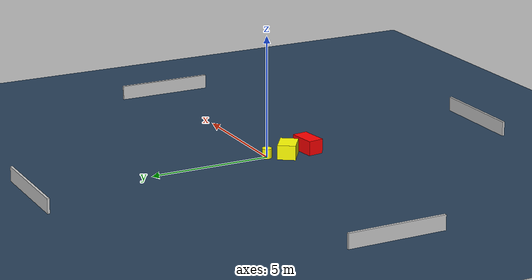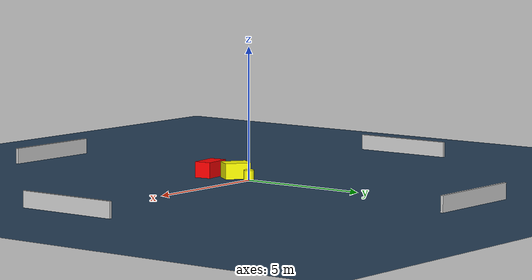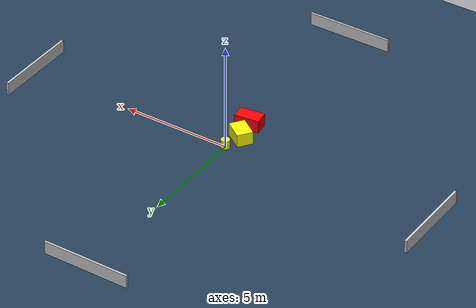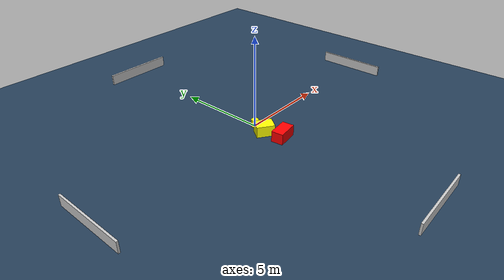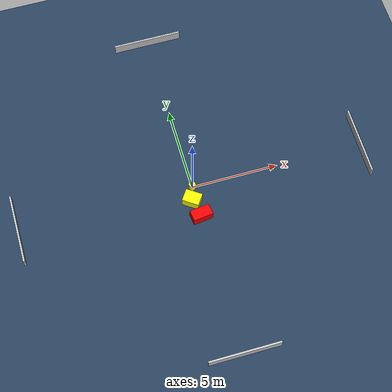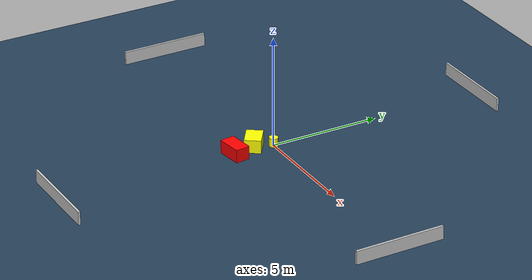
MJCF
<?xml version="1.0" ?>
<mujoco model="generated_environment">
  <option timestep="0.01" integrator="RK4" cone="elliptic"/>
  <default>
    <geom density="1"/>
  </default>
  <asset>
    <texture builtin="gradient" height="3072" name="skybox" rgb1="0.3 0.5 0.7" rgb2="0 0 0" type="skybox" width="512"/>
    <texture builtin="checker" height="300" name="groundplane" rgb1="0.2 0.3 0.4" rgb2="0.1 0.2 0.3" type="2d" width="300"/>
    <material name="groundplane" reflectance="0.2" texrepeat="5 5" texture="groundplane"/>
  </asset>
  <worldbody>
    <light dir="0 0 -1" directional="true" pos="0 0 1.5"/>
    <geom condim="3" friction="0.5 0.005 0.001" material="groundplane" name="floor" pos="0 0 0" size="0 0 0.05" type="plane"/>
    <body name="walls">
      <geom name="wall_1" condim="4" pos="-10.0 0.0 0.3" rgba="0.800000011920929 0.800000011920929 0.800000011920929 1.0" size="0.05 2.0 0.3" type="box"/>
      <geom name="wall_2" condim="4" pos="10.0 0.0 0.3" rgba="0.800000011920929 0.800000011920929 0.800000011920929 1.0" size="0.05 2.0 0.3" type="box"/>
      <geom name="wall_3" condim="4" pos="0.0 -10.0 0.3" rgba="0.800000011920929 0.800000011920929 0.800000011920929 1.0" size="2.0 0.05 0.3" type="box"/>
      <geom name="wall_4" condim="4" pos="0.0 10.0 0.3" rgba="0.800000011920929 0.800000011920929 0.800000011920929 1.0" size="2.0 0.05 0.3" type="box"/>
    </body>
    <body name="robot">
      <joint name="joint_x" type="slide" pos="0 0 0" axis="1 0 0"/>
      <joint name="joint_y" type="slide" pos="0 0 0" axis="0 1 0"/>
      <geom name="robot" type="cylinder" pos="0.0 0.0 0.2" size="0.2 0.2 0.0" mass="5.0" friction="1.0 0.005 0.0001" condim="4" rgba="1.0 1.0 0.0 1.0"/>
    </body>
    <body name="obstacle_1_movable">
      <geom name="obstacle_1_movable" condim="4" pos="-0.23557874236560364 -0.8266401295675555 0.3" euler="0 0 54.95692684710358" friction="0.0 0.005 0.001" rgba="1.0 1.0 0.0 1.0" size="0.365162298646562 0.48430422494641745 0.3" type="box" mass="0.1"/>
      <joint type="free"/>
    </body>
    <body name="obstacle_2_static">
      <geom name="obstacle_2_static" condim="4" pos="-0.0035180982862295894 -1.8512957284833433 0.3" euler="0 0 277.43369782001093" friction="0.0 0.005 0.001" rgba="1.0 0.0 0.0 1.0" size="0.3221082347960045 0.5665301322670544 0.3" type="box"/>
    </body>
  </worldbody>
  <actuator>
    <motor name="actuator_x" joint="joint_x" gear="1" ctrlrange="-1 1"/>
    <motor name="actuator_y" joint="joint_y" gear="1" ctrlrange="-1 1"/>
  </actuator>
</mujoco>
